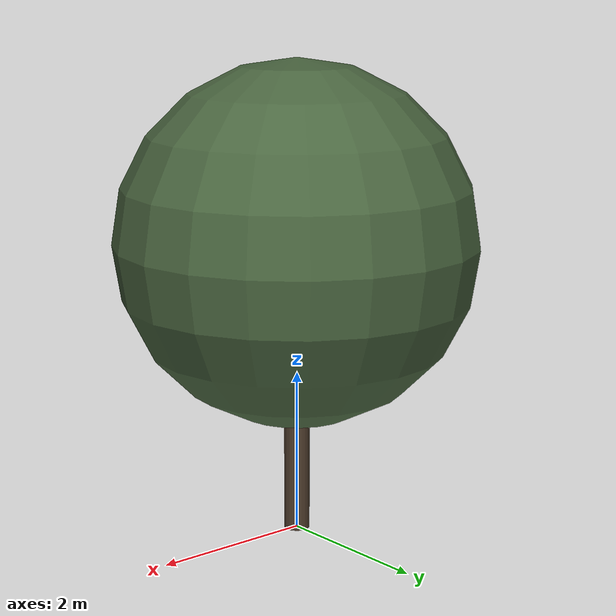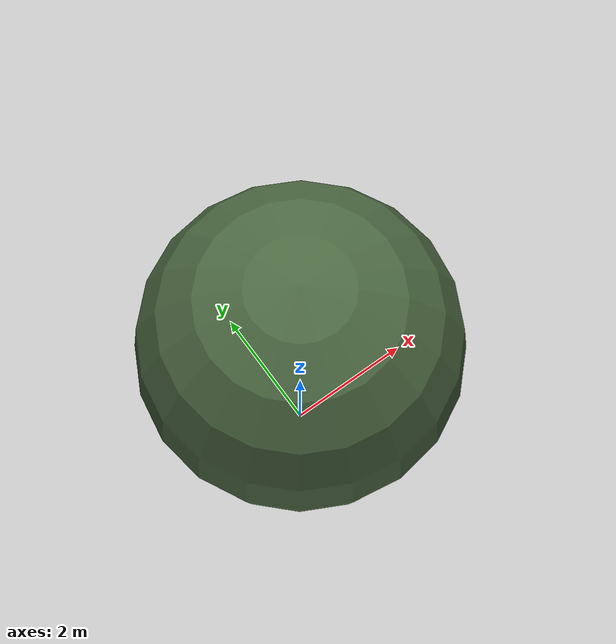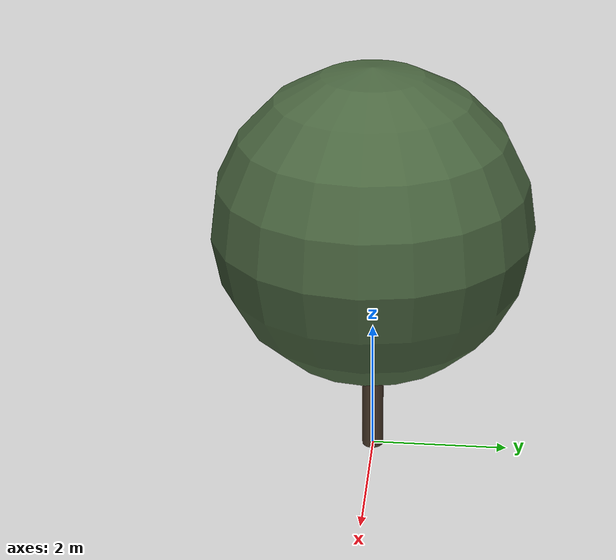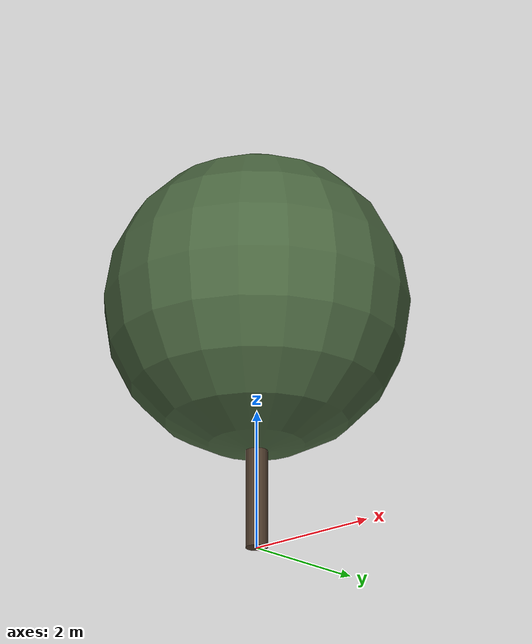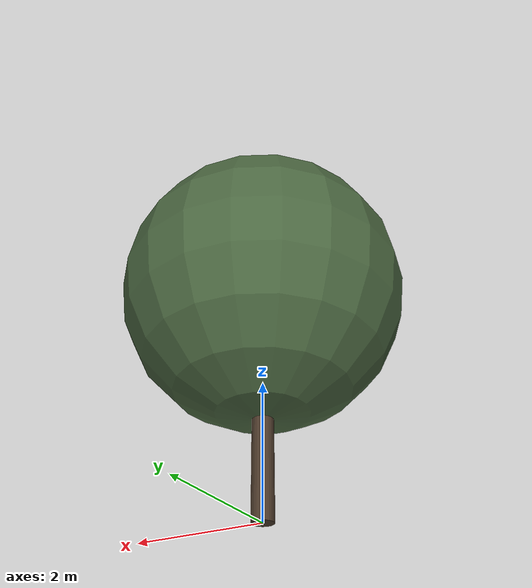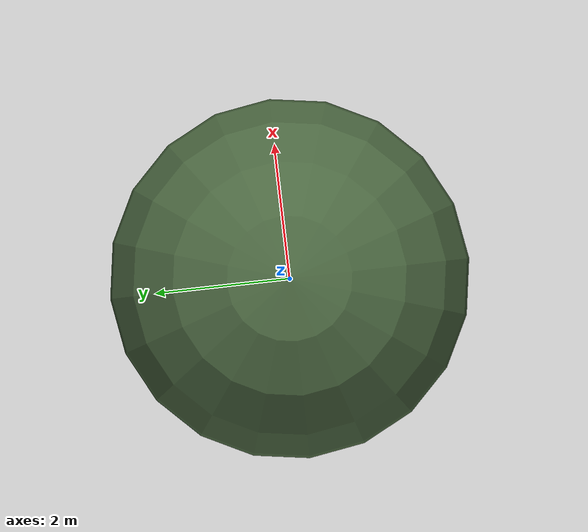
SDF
<?xml version="1.0" ?>
<sdf version="1.10">
  <model name="chene_vert_03">
    <static>true</static>

    <!-- Tronc -->
    <link name="trunk">
      <pose>0 0 1.4757898495204484 0 0 0</pose>
      <visual name="trunk_visual">
        <geometry>
          <cylinder>
            <radius>0.15743279517597417</radius>
            <length>2.951579699040897</length>
          </cylinder>
        </geometry>
        <material>
          <ambient>0.29 0.22 0.16 1</ambient>
          <diffuse>0.29 0.22 0.16 1</diffuse>
          <specular>0.1 0.1 0.1 1</specular>
        </material>
      </visual>
      <collision name="trunk_collision">
        <geometry>
          <cylinder>
            <radius>0.15743279517597417</radius>
            <length>2.951579699040897</length>
          </cylinder>
        </geometry>
      </collision>
    </link>

    <!-- Feuillage -->
    <link name="crown">
      <pose>0 0 3.619798804839633 0 0 0</pose>
      <visual name="crown_visual">
        <geometry>
          <sphere>
              <radius>2.2273970193291204</radius>
            </sphere>
        </geometry>
        <material>
          <ambient>0.29 0.40 0.25 1</ambient>
          <diffuse>0.29 0.40 0.25 1</diffuse>
          <specular>0.1 0.1 0.1 1</specular>
        </material>
      </visual>
      <collision name="crown_collision">
        <geometry>
          <sphere>
            <radius>1.7819176154632963</radius>
          </sphere>
        </geometry>
      </collision>
    </link>

    <!-- Joint tronc-feuillage -->
    <joint name="trunk_crown_joint" type="fixed">
      <parent>trunk</parent>
      <child>crown</child>
    </joint>

  </model>
</sdf>
